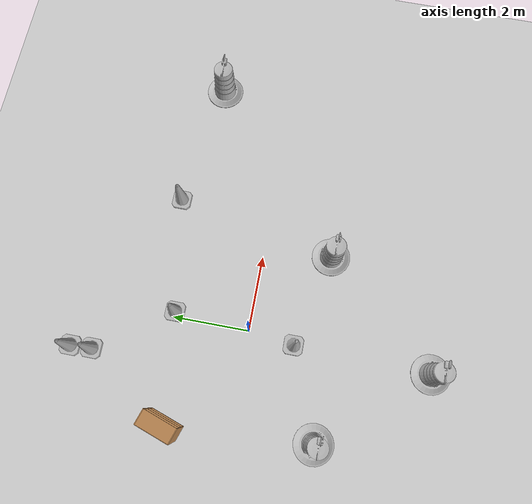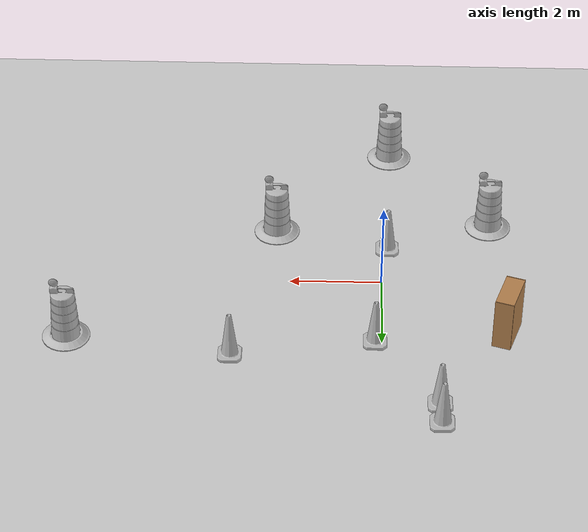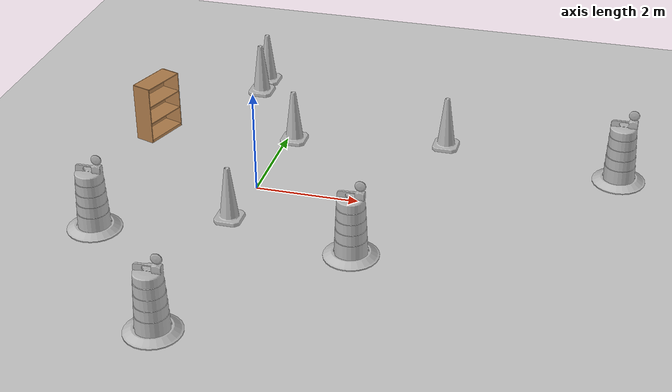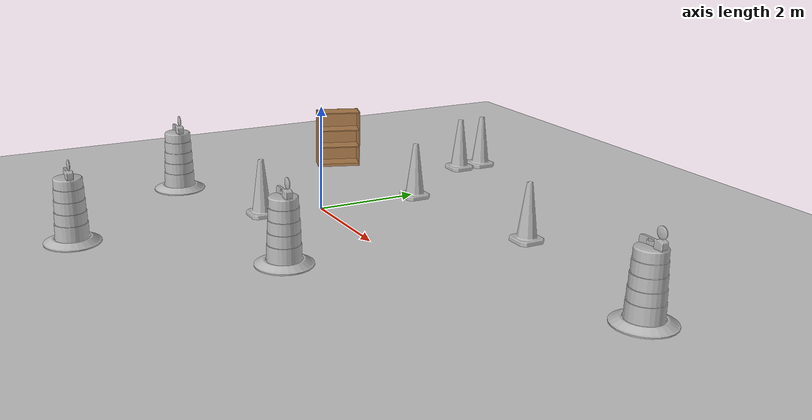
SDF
<sdf version="1.7">
 <world name="default">
  <light name="sun" type="directional">
   <pose>0 0 10 0 -0 0</pose>
   <diffuse>0.8 0.8 0.8 1</diffuse>
   <specular>0.2 0.2 0.2 1</specular>
   <attenuation>
    <range>1000</range>
    <constant>0.9</constant>
    <linear>0.01</linear>
    <quadratic>0.001</quadratic>
   </attenuation>
   <direction>-0.5 0.1 -0.9</direction>
   <spot><inner_angle>0</inner_angle><outer_angle>0</outer_angle><falloff>0</falloff></spot>
  </light>
  <model name="ground_plane">
   <static>1</static>
   <link name="link">
    <collision name="collision">
     <geometry><plane><normal>0 0 1</normal><size>100 100</size></plane></geometry>
     <surface>
      <contact><collide_bitmask>65535</collide_bitmask></contact>
      <friction><ode><mu>100</mu><mu2>50</mu2></ode></friction>
     </surface>
    </collision>
    <visual name="visual">
     <cast_shadows>0</cast_shadows>
     <geometry><plane><normal>0 0 1</normal><size>100 100</size></plane></geometry>
     <material>
      <script><uri>file://media/materials/scripts/gazebo.material</uri><name>Gazebo/Grey</name></script>
     </material>
    </visual>
   </link>
  </model>
  <gravity>0 0 -9.8</gravity>
  <magnetic_field>6e-06 2.3e-05 -4.2e-05</magnetic_field>
  <atmosphere type="adiabatic"/>
  <physics type="ode">
   <max_step_size>0.001</max_step_size>
   <real_time_factor>1</real_time_factor>
   <real_time_update_rate>1000</real_time_update_rate>
  </physics>
  <scene><ambient>0.4 0.4 0.4 1</ambient><background>0.7 0.7 0.7 1</background><shadows>1</shadows></scene>
  <spherical_coordinates>
   <surface_model>EARTH_WGS84</surface_model>
   <latitude_deg>0</latitude_deg>
   <longitude_deg>0</longitude_deg>
   <elevation>0</elevation>
   <heading_deg>0</heading_deg>
  </spherical_coordinates>
  <model name="Construction Barrel">
   <link name="link">
    <inertial>
     <pose>0 0 0.4 0 -0 0</pose>
     <mass>500</mass>
     <inertia><ixx>51.2096</ixx><iyy>51.2096</iyy><izz>25</izz><ixy>0</ixy><ixz>0</ixz><iyz>0</iyz></inertia>
    </inertial>
    <collision name="collision">
     <geometry><mesh><uri>model://construction_barrel/meshes/construction_barrel.dae</uri></mesh></geometry>
    </collision>
    <visual name="visual">
     <geometry><mesh><uri>model://construction_barrel/meshes/construction_barrel.dae</uri></mesh></geometry>
    </visual>
   </link>
   <pose>-2.42436 -2.0776 -0 0 -0 -2.3e-05</pose>
  </model>
  <model name="Construction Barrel_0">
   <link name="link">
    <inertial>
     <pose>0 0 0.4 0 -0 0</pose>
     <mass>500</mass>
     <inertia><ixx>51.2096</ixx><iyy>51.2096</iyy><izz>25</izz><ixy>0</ixy><ixz>0</ixz><iyz>0</iyz></inertia>
    </inertial>
    <collision name="collision">
     <geometry><mesh><uri>model://construction_barrel/meshes/construction_barrel.dae</uri></mesh></geometry>
    </collision>
    <visual name="visual">
     <geometry><mesh><uri>model://construction_barrel/meshes/construction_barrel.dae</uri></mesh></geometry>
    </visual>
   </link>
   <pose>2.34331 -1.78198 -0 0 -0 -2e-05</pose>
  </model>
  <model name="Construction Cone">
   <link name="link">
    <collision name="collision">
     <geometry>
      <mesh><scale>10 10 10</scale><uri>model://construction_cone/meshes/construction_cone.dae</uri></mesh>
     </geometry>
    </collision>
    <visual name="visual">
     <geometry>
      <mesh><scale>10 10 10</scale><uri>model://construction_cone/meshes/construction_cone.dae</uri></mesh>
     </geometry>
    </visual>
    <inertial>
     <inertia><ixx>1</ixx><ixy>0</ixy><ixz>0</ixz><iyy>1</iyy><iyz>0</iyz><izz>1</izz></inertia>
     <mass>1</mass>
    </inertial>
   </link>
   <pose>3.18734 2.48441 -0 0 -0 0</pose>
  </model>
  <model name="Construction Cone_0">
   <link name="link">
    <collision name="collision">
     <geometry>
      <mesh><scale>10 10 10</scale><uri>model://construction_cone/meshes/construction_cone.dae</uri></mesh>
     </geometry>
    </collision>
    <visual name="visual">
     <geometry>
      <mesh><scale>10 10 10</scale><uri>model://construction_cone/meshes/construction_cone.dae</uri></mesh>
     </geometry>
    </visual>
    <inertial>
     <inertia><ixx>1</ixx><ixy>0</ixy><ixz>0</ixz><iyy>1</iyy><iyz>0</iyz><izz>1</izz></inertia>
     <mass>1</mass>
    </inertial>
   </link>
   <pose>-1.19621 4.43347 -0 0 -0 0</pose>
  </model>
  <model name="Construction Cone_1">
   <link name="link">
    <collision name="collision">
     <geometry>
      <mesh><scale>10 10 10</scale><uri>model://construction_cone/meshes/construction_cone.dae</uri></mesh>
     </geometry>
    </collision>
    <visual name="visual">
     <geometry>
      <mesh><scale>10 10 10</scale><uri>model://construction_cone/meshes/construction_cone.dae</uri></mesh>
     </geometry>
    </visual>
    <inertial>
     <inertia><ixx>1</ixx><ixy>0</ixy><ixz>0</ixz><iyy>1</iyy><iyz>0</iyz><izz>1</izz></inertia>
     <mass>1</mass>
    </inertial>
   </link>
   <pose>-1.17013 3.87427 -0 0 -1e-06 0</pose>
  </model>
  <model name="bookshelf">
   <static>1</static>
   <link name="link">
    <inertial><mass>1</mass></inertial>
    <collision name="back">
     <pose>0 0.005 0.6 0 -0 0</pose>
     <geometry><box><size>0.9 0.01 1.2</size></box></geometry>
    </collision>
    <visual name="visual1">
     <pose>0 0.005 0.6 0 -0 0</pose>
     <geometry><box><size>0.9 0.01 1.2</size></box></geometry>
     <material>
      <script><uri>file://media/materials/scripts/gazebo.material</uri><name>Gazebo/Wood</name></script>
     </material>
    </visual>
    <collision name="left_side">
     <pose>0.45 -0.195 0.6 0 -0 0</pose>
     <geometry><box><size>0.02 0.4 1.2</size></box></geometry>
    </collision>
    <visual name="visual2">
     <pose>0.45 -0.195 0.6 0 -0 0</pose>
     <geometry><box><size>0.02 0.4 1.2</size></box></geometry>
     <material>
      <script><uri>file://media/materials/scripts/gazebo.material</uri><name>Gazebo/Wood</name></script>
     </material>
    </visual>
    <collision name="right_side">
     <pose>-0.45 -0.195 0.6 0 -0 0</pose>
     <geometry><box><size>0.02 0.4 1.2</size></box></geometry>
    </collision>
    <visual name="visual3">
     <pose>-0.45 -0.195 0.6 0 -0 0</pose>
     <geometry><box><size>0.02 0.4 1.2</size></box></geometry>
     <material>
      <script><uri>file://media/materials/scripts/gazebo.material</uri><name>Gazebo/Wood</name></script>
     </material>
    </visual>
    <collision name="bottom">
     <pose>0 -0.195 0.03 0 -0 0</pose>
     <geometry><box><size>0.88 0.4 0.06</size></box></geometry>
    </collision>
    <visual name="visual4">
     <pose>0 -0.195 0.03 0 -0 0</pose>
     <geometry><box><size>0.88 0.4 0.06</size></box></geometry>
     <material>
      <script><uri>file://media/materials/scripts/gazebo.material</uri><name>Gazebo/Wood</name></script>
     </material>
    </visual>
    <collision name="top">
     <pose>0 -0.195 1.19 0 -0 0</pose>
     <geometry><box><size>0.88 0.4 0.02</size></box></geometry>
    </collision>
    <visual name="visual5">
     <pose>0 -0.195 1.19 0 -0 0</pose>
     <geometry><box><size>0.88 0.4 0.02</size></box></geometry>
     <material>
      <script><uri>file://media/materials/scripts/gazebo.material</uri><name>Gazebo/Wood</name></script>
     </material>
    </visual>
    <collision name="low_shelf">
     <pose>0 -0.195 0.43 0 -0 0</pose>
     <geometry><box><size>0.88 0.4 0.02</size></box></geometry>
    </collision>
    <visual name="visual6">
     <pose>0 -0.195 0.43 0 -0 0</pose>
     <geometry><box><size>0.88 0.4 0.02</size></box></geometry>
     <material>
      <script><uri>file://media/materials/scripts/gazebo.material</uri><name>Gazebo/Wood</name></script>
     </material>
    </visual>
    <collision name="high_shelf">
     <pose>0 -0.195 0.8 0 -0 0</pose>
     <geometry><box><size>0.88 0.4 0.02</size></box></geometry>
    </collision>
    <visual name="visual7">
     <pose>0 -0.195 0.8 0 -0 0</pose>
     <geometry><box><size>0.88 0.4 0.02</size></box></geometry>
     <material>
      <script><uri>file://media/materials/scripts/gazebo.material</uri><name>Gazebo/Wood</name></script>
     </material>
    </visual>
   </link>
   <pose>-2.82856 1.70211 0 0 -0 1.2499</pose>
  </model>
  <model name="Construction Barrel_1">
   <link name="link">
    <inertial>
     <pose>0 0 0.4 0 -0 0</pose>
     <mass>500</mass>
     <inertia><ixx>51.2096</ixx><iyy>51.2096</iyy><izz>25</izz><ixy>0</ixy><ixz>0</ixz><iyz>0</iyz></inertia>
    </inertial>
    <collision name="collision">
     <geometry><mesh><uri>model://construction_barrel/meshes/construction_barrel.dae</uri></mesh></geometry>
    </collision>
    <visual name="visual">
     <geometry><mesh><uri>model://construction_barrel/meshes/construction_barrel.dae</uri></mesh></geometry>
    </visual>
   </link>
   <pose>-0.213444 -4.72584 -1e-06 4e-06 -1e-06 -1.9e-05</pose>
  </model>
  <model name="Construction Barrel_2">
   <link name="link">
    <inertial>
     <pose>0 0 0.4 0 -0 0</pose>
     <mass>500</mass>
     <inertia><ixx>51.2096</ixx><iyy>51.2096</iyy><izz>25</izz><ixy>0</ixy><ixz>0</ixz><iyz>0</iyz></inertia>
    </inertial>
    <collision name="collision">
     <geometry><mesh><uri>model://construction_barrel/meshes/construction_barrel.dae</uri></mesh></geometry>
    </collision>
    <visual name="visual">
     <geometry><mesh><uri>model://construction_barrel/meshes/construction_barrel.dae</uri></mesh></geometry>
    </visual>
   </link>
   <pose>6.6834 1.98303 -0 0 0 -1.3e-05</pose>
  </model>
  <model name="Construction Cone_2">
   <link name="link">
    <collision name="collision">
     <geometry>
      <mesh><scale>10 10 10</scale><uri>model://construction_cone/meshes/construction_cone.dae</uri></mesh>
     </geometry>
    </collision>
    <visual name="visual">
     <geometry>
      <mesh><scale>10 10 10</scale><uri>model://construction_cone/meshes/construction_cone.dae</uri></mesh>
     </geometry>
    </visual>
    <inertial>
     <inertia><ixx>1</ixx><ixy>0</ixy><ixz>0</ixz><iyy>1</iyy><iyz>0</iyz><izz>1</izz></inertia>
     <mass>1</mass>
    </inertial>
   </link>
   <pose>-0.139362 -1.18547 -0 0 -0 0</pose>
  </model>
  <model name="Construction Cone_3">
   <link name="link">
    <collision name="collision">
     <geometry>
      <mesh><scale>10 10 10</scale><uri>model://construction_cone/meshes/construction_cone.dae</uri></mesh>
     </geometry>
    </collision>
    <visual name="visual">
     <geometry>
      <mesh><scale>10 10 10</scale><uri>model://construction_cone/meshes/construction_cone.dae</uri></mesh>
     </geometry>
    </visual>
    <inertial>
     <inertia><ixx>1</ixx><ixy>0</ixy><ixz>0</ixz><iyy>1</iyy><iyz>0</iyz><izz>1</izz></inertia>
     <mass>1</mass>
    </inertial>
   </link>
   <pose>0.145956 1.98537 -0 0 -1e-06 0</pose>
  </model>
 </world>
</sdf>
